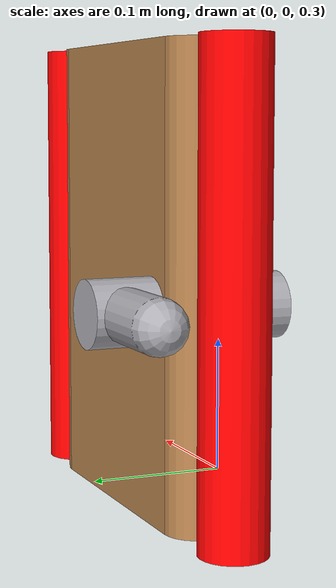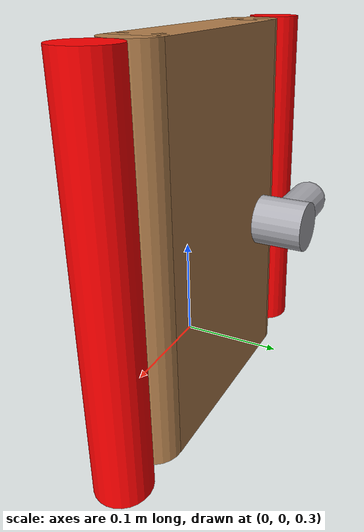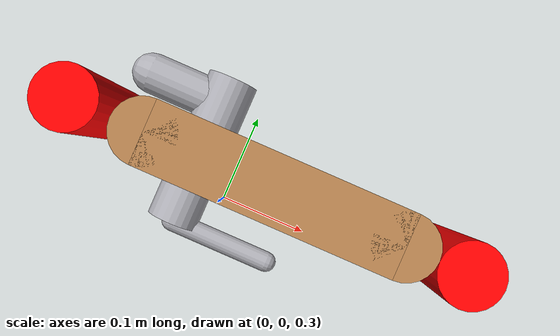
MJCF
<mujoco model='ADROIT-door(v1.5)'>

    <!-- ======= WORLD ======= -->
    <worldbody>
        <light directional='false' diffuse='.7 .7 .7' specular='0.03 0.03 0.03' pos='-1 -1.0 4.0' dir='1 1.0 -4'/>
        <camera name="fixed" pos="0 -0.7 0.7" quat="0.92388 0.382683 0 0" />
        <!-- Camera for the VIL paper -->
        <camera name="vil_camera" pos="0 -1.2 1.2" quat="0.92388 0.382683 0 0" />
        <camera name="view_1" pos="-0.8 -0.8 0.8" euler="0.785 -0.785 -0.785" />
        <camera name="view_2" pos="0 0.5 0.2" euler="-1.57 0 3.14" />
        <camera name="view_3" pos="0 0.2 -0.2" euler="-2.35 0 3.14" />
        <camera name="view_4" pos="0.8 -0.8 0.8" euler="0.785 0.785 0.785" />
        <camera name="view_5" pos="0 -0.25 -0.4" euler="-3.2 0 3.14" />
        <camera name="top" pos="0 0 1.5" euler="0 0 3.14" />

        <!-- ======= DOOR ======= -->
        <body name="frame" pos="-0.107339 0.0435293 0.447376" user="1001 0 2002 -0.4 -0.1 0.252 0 0.3 0.45">
            <inertial pos="0.15 0 0" quat="0.25 0.25 0.25 0.25" mass="7.85398" diaginertia="0.923301 0.764585 0.168533" />
            <geom size="0.025 0.175" pos="0.3 0 0" type="cylinder" material="MatWood" rgba="1 0 0 1" />
            <geom size="0.025 0.175" pos="-0.01 0 0" type="cylinder" material="MatWood" rgba="1 0 0 1" />
            <site name="S_handle_target" pos="0.375 -0.25 -.09" size="0.025" group='3'/>
            <body name="door" pos="0.15 0 0">
                <inertial pos="0.0296816 -0.00152345 0" quat="0.701072 0 0 0.713091" mass="2.43455" diaginertia="0.0913751 0.0521615 0.043714" />
                <joint name="door_hinge" pos="0.155 0 0" axis="0 0 1" range="0 1.57" damping="1" frictionloss="2" />
                <geom size="0.1 0.025 0.175" type="box" friction="1 1 1" material="MatWood" />
                <geom size="0.025 0.175" pos="0.1 0 0" type="cylinder" material="MatWood" />
                <geom size="0.025 0.175" pos="-0.1 0 0" type="cylinder" material="MatWood" />
                <body name="latch" pos="-0.075 0 -0.0175">
                    <inertial pos="-0.017762 0.0138544 0" quat="0.365653 0.605347 -0.36522 0.605365" mass="3.53743" diaginertia="0.0483771 0.0410001 0.0111013" />
                    <joint name="latch" pos="0 0 0" axis="0 1 0" range="0 1.8" frictionloss="5" />
                    <geom size="0.025 0.075" quat="0.707388 0.706825 0 0" type="cylinder" material="MatFoil" />
                    <geom size="0.01 0.05" pos="0.05 -0.075 0" quat="0.707388 0 0.706825 0" type="capsule" material="MatFoil" />
                    <geom size="0.02 0.035" pos="-0.04 0.05 0" quat="0.707388 0 0.706825 0" type="capsule" material="MatFoil" />
                    <site name="S_handle" pos="0.075 -0.075 0" size="0.025" group='3'/>
                </body>
            </body>
        </body>

    </worldbody>

    <include file='assets.xml'/>

</mujoco>

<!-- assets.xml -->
<mujocoinclude>
 	<compiler angle="radian" meshdir='../../../sims/Adroit/resources/meshes/' texturedir='../textures/' />
    <option apirate="200" iterations="20" noslip_iterations="20"/>
    <size njmax="500" nconmax="100" nstack="600000" nuser_body="9" nuser_jnt="1" nuser_site="1" nuser_tendon="1" nuser_actuator="16" nuser_sensor="1" />
    <visual>
        <global offwidth="3024" offheight="1680" />
        <quality shadowsize="4096" offsamples="8" />
        <map force="0.1" fogend="5" />
    </visual>
    <default class="main">
        <mesh scale="0.001 0.001 0.001" />
        <joint limited="true" margin="0.01" armature="0.001" damping="0.05" frictionloss="0.001" />
        <geom friction="1 0.5 0.01" margin="0.0005" />
        <site size="0.005 0 0" rgba="0.4 0.9 0.4 1" />
        <tendon limited="true" />
        <general ctrllimited="true" ctrlrange="-1 1" user="0 1 0.03 0.0939711 0.513477 0.0358776 1.23598 8.40409 0.485031 6.04244 1.02187 0.175297 0.121642 0 0 0" />
        <default class="D_Touch">
            <site size="0.009 0.004 0.013" group="4" type="box" rgba="0.8 0.8 0.8 0.15" />
            <general user="0 1 0.03 0.0939711 0.513477 0.0358776 1.23598 8.40409 0.485031 6.04244 1.02187 0.175297 0.121642 0 0 0" />
        </default>
        <default class="DC_Hand">
            <geom conaffinity="0" group="4" material="MatColl" />
            <general user="0 1 0.03 0.0939711 0.513477 0.0358776 1.23598 8.40409 0.485031 6.04244 1.02187 0.175297 0.121642 0 0 0" />
        </default>
        <default class="D_Vizual">
            <geom type="mesh" contype="0" conaffinity="0" group="1" material="MatViz" />
            <general user="0 1 0.03 0.0939711 0.513477 0.0358776 1.23598 8.40409 0.485031 6.04244 1.02187 0.175297 0.121642 0 0 0" />
        </default>
        <default class="free">
            <joint type="free" limited="false" armature="0" damping="0" />
            <general user="0 1 0.03 0.0939711 0.513477 0.0358776 1.23598 8.40409 0.485031 6.04244 1.02187 0.175297 0.121642 0 0 0" />
        </default>
    </default>
    <asset>
        <texture type="cube" name="texgeom" builtin="flat" mark="cross" rgb1="0.3 0.6 0.5" rgb2="0.3 0.6 0.5" width="127" height="762" />
        <texture type="cube" name="wood" file="textures/wood.png" />
        <texture type="2d" name="wood2d" file="textures/wood.png" />
        <texture type="cube" name="square" file="textures/square.png" />
        <texture type="cube" name="foil" file="textures/silverRaw.png" />
        <texture type="cube" name="woodb" file="textures/woodb.png" />
        <texture type="2d" name="groundplane" builtin="checker" rgb1="0.2 0.3 0.4" rgb2="0.1 0.2 0.3" width="100" height="100" />
        <texture type="2d" name="marble2d" file="textures/marble.png" />
        <texture type="cube" name="marblecube" file="textures/marble.png" />
        <material name="MatColl" specular="1" shininess="0.3" reflectance="0.5" rgba="0.4 0.5 0.6 1" />
        <material name="MatViz" specular="0.75" shininess="0.1" reflectance="0.5" rgba="0.9 0.7 0.5 1" />
        <material name="MatGnd" specular="0.3" shininess="0.3" reflectance="0.3" rgba="0.5 0.55 0.5 1" />
        <material name="object" texture="texgeom" />
        <material name="groundplane" texture="groundplane" texrepeat="10 10" />
        <material name="table2d" texture="marble2d" reflectance="0.3" rgba="0.8 0.8 0.8 1" />
        <material name="tablecube" texture="marblecube" rgba="0.8 0.8 0.8 1" />
        <material name="MatFoil" texture="foil" specular="1" shininess="0.3" rgba="0.9 0.9 0.9 1" />
        <material name="MatPlane" specular="0.3" shininess="0.3" rgba="0.3 0.3 0.2 1" />
        <material name="MatWood" texture="wood" texrepeat="3 3" specular="0.4" shininess="0.1" />
        <material name="MatSquare" texture="square" specular="1" shininess="0.6" rgba="0.8 0.8 0.8 1" />
        <material name="MatWoodR" texture="wood" specular="1" shininess="0.3" rgba="1 0.5 0.5 1" />
        <material name="MatWoodG" texture="wood" specular="1" shininess="0.3" rgba="0.2 1 0.2 1" />
        <material name="MatWoodB" texture="woodb" specular="1" shininess="0.3" />

    </asset>

 </mujocoinclude>
